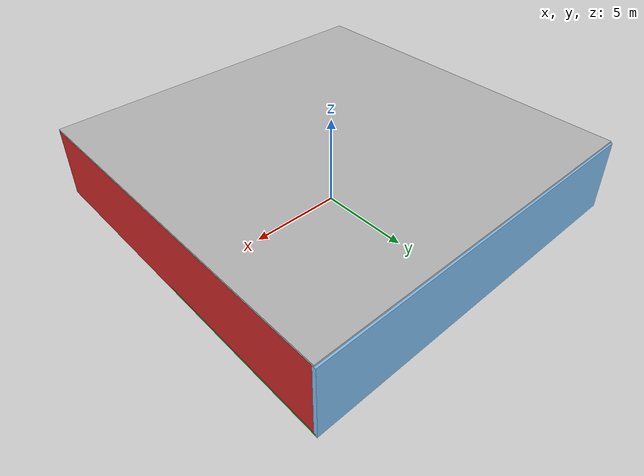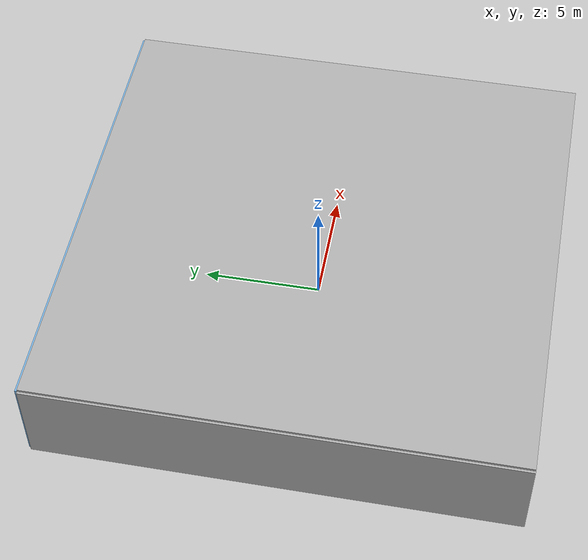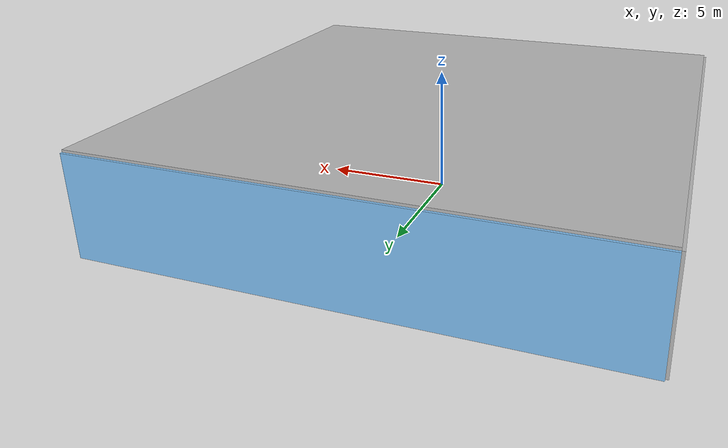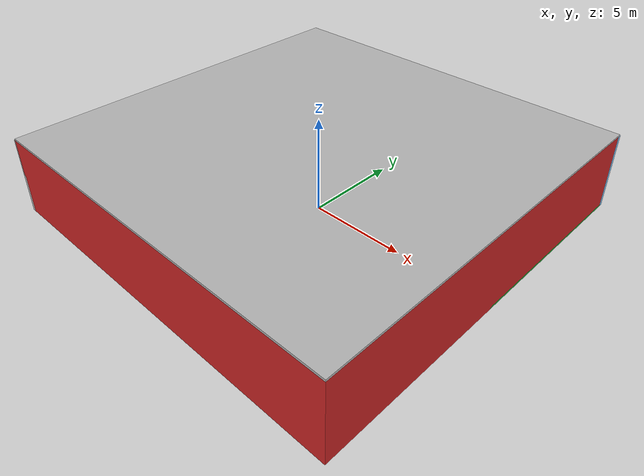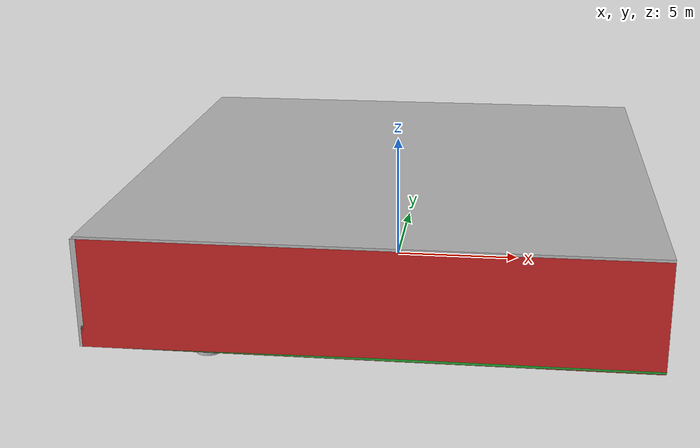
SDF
<sdf version="1.4">
 <world name="default">
  <physics type="ode">
   <max_step_size>0.001</max_step_size>
   <real_time_factor>1</real_time_factor>
   <real_time_update_rate>1000</real_time_update_rate>
   <gravity>0 0 -9.8</gravity>
  </physics>
  <scene><ambient>0.4 0.4 0.4 1</ambient><background>0.7 0.7 0.7 1</background><shadows>1</shadows></scene>
  <model name="Surrounding">
   <static>1</static>
   <link name="Ceiling">
    <collision name="Ceiling_Collision"><geometry><box><size>20 20 0.1</size></box></geometry></collision>
    <visual name="Ceiling_Visual">
     <geometry><box><size>20 20 0.1</size></box></geometry>
     <material>
      <script><uri>file://media/materials/scripts/gazebo.material</uri><name>Gazebo/CloudySky</name></script>
     </material>
    </visual>
    <pose>0 0 4.05 0 0 0</pose>
   </link>
   <link name="Wall_South">
    <collision name="Wall_South_Collision">
     <geometry><box><size>20 0 4</size></box></geometry>
     <pose>0 0 2 0 -0 0</pose>
    </collision>
    <visual name="Wall_South_Visual">
     <pose>0 0 2 0 -0 0</pose>
     <geometry><box><size>20 0 4</size></box></geometry>
     <material>
      <script><uri>file://media/materials/scripts/gazebo.material</uri><name>Gazebo/RedBright</name></script>
     </material>
    </visual>
    <velocity_decay><linear>0</linear><angular>0</angular></velocity_decay>
    <pose>0 -10 0 0 -0 0</pose>
   </link>
   <link name="Wall_East">
    <collision name="Wall_21_Collision">
     <geometry><box><size>20 0 4</size></box></geometry>
     <pose>0 0 2 0 -0 0</pose>
    </collision>
    <visual name="Wall_21_Visual">
     <pose>0 0 2 0 -0 0</pose>
     <geometry><box><size>20 0 4</size></box></geometry>
     <material>
      <script><uri>file://media/materials/scripts/gazebo.material</uri><name>Gazebo/Red</name></script>
     </material>
    </visual>
    <velocity_decay><linear>0</linear><angular>0</angular></velocity_decay>
    <pose>10 0 0 0 -0 1.5708</pose>
   </link>
   <link name="Wall_North">
    <collision name="Wall_22_Collision">
     <geometry><box><size>20 0.2 4</size></box></geometry>
     <pose>0 0 2 0 -0 0</pose>
    </collision>
    <visual name="Wall_22_Visual">
     <pose>0 0 2 0 -0 0</pose>
     <geometry><box><size>20 0.2 4</size></box></geometry>
     <material>
      <script><uri>file://media/materials/scripts/gazebo.material</uri><name>Gazebo/SkyBlue</name></script>
     </material>
    </visual>
    <velocity_decay><linear>0</linear><angular>0</angular></velocity_decay>
    <pose>0 10 0 0 -0 0</pose>
   </link>
   <link name="Wall_West">
    <collision name="Wall_23_Collision">
     <geometry><box><size>20 0.2 4</size></box></geometry>
     <pose>0 0 2 0 -0 0</pose>
    </collision>
    <visual name="Wall_23_Visual">
     <pose>0 0 2 0 -0 0</pose>
     <geometry><box><size>20 0.2 4</size></box></geometry>
     <material>
      <script><uri>file://media/materials/scripts/gazebo.material</uri><name>Gazebo/CloudySky</name></script>
     </material>
    </visual>
    <velocity_decay><linear>0</linear><angular>0</angular></velocity_decay>
    <pose>-10 0 0 0 0 -1.5708</pose>
   </link>
   <link name="Ground_link">
    <collision name="collision">
     <pose>0 0 .05 0 -0 0</pose>
     <geometry><box><size>20 20 0.1</size></box></geometry>
    </collision>
    <visual name="visual">
     <pose>0 0 .05 0 -0 0</pose>
     <geometry><box><size>20 20 0.1</size></box></geometry>
     <material>
      <script><uri>file://media/materials/scripts/gazebo.material</uri><name>Gazebo/Green</name></script>
     </material>
    </visual>
   </link>
   <static>1</static>
  </model>
  <spherical_coordinates>
   <surface_model>EARTH_WGS84</surface_model>
   <latitude_deg>0</latitude_deg>
   <longitude_deg>0</longitude_deg>
   <elevation>0</elevation>
   <heading_deg>0</heading_deg>
  </spherical_coordinates>
  <light name="lightball_0" type="diffuse">
   <diffuse>0.8 0.8 0.8 1</diffuse>
   <specular>0.2 0.2 0.2 1</specular>
   <attenuation>
    <range>100</range>
    <constant>0.7</constant>
    <linear>0.01</linear>
    <quadratic>0.001</quadratic>
   </attenuation>
   <direction>-0.5 0.1 -0.9</direction>
   <pose>3.91476040887 -5.29565696545 3.60057403078 0 0 0</pose>
  </light>
  <light name="lightball_1" type="diffuse">
   <diffuse>0.8 0.8 0.8 1</diffuse>
   <specular>0.2 0.2 0.2 1</specular>
   <attenuation>
    <range>100</range>
    <constant>0.7</constant>
    <linear>0.01</linear>
    <quadratic>0.001</quadratic>
   </attenuation>
   <direction>-0.5 0.1 -0.9</direction>
   <pose>-6.65295015059 9.15610451754 2.35181766005 0 0 0</pose>
  </light>
  <light name="lightball_2" type="diffuse">
   <diffuse>0.8 0.8 0.8 1</diffuse>
   <specular>0.2 0.2 0.2 1</specular>
   <attenuation>
    <range>100</range>
    <constant>0.7</constant>
    <linear>0.01</linear>
    <quadratic>0.001</quadratic>
   </attenuation>
   <direction>-0.5 0.1 -0.9</direction>
   <pose>-7.95908698335 3.82841772768 1.47403918365 0 0 0</pose>
  </light>
  <light name="lightball_3" type="diffuse">
   <diffuse>0.8 0.8 0.8 1</diffuse>
   <specular>0.2 0.2 0.2 1</specular>
   <attenuation>
    <range>100</range>
    <constant>0.7</constant>
    <linear>0.01</linear>
    <quadratic>0.001</quadratic>
   </attenuation>
   <direction>-0.5 0.1 -0.9</direction>
   <pose>7.99107663372 -3.85501580444 3.06362746816 0 0 0</pose>
  </light>
  <light name="lightball_4" type="diffuse">
   <diffuse>0.8 0.8 0.8 1</diffuse>
   <specular>0.2 0.2 0.2 1</specular>
   <attenuation>
    <range>100</range>
    <constant>0.7</constant>
    <linear>0.01</linear>
    <quadratic>0.001</quadratic>
   </attenuation>
   <direction>-0.5 0.1 -0.9</direction>
   <pose>-9.9179154773 5.94254384376 2.13533746953 0 0 0</pose>
  </light>
  <light name="lightball_5" type="diffuse">
   <diffuse>0.8 0.8 0.8 1</diffuse>
   <specular>0.2 0.2 0.2 1</specular>
   <attenuation>
    <range>100</range>
    <constant>0.7</constant>
    <linear>0.01</linear>
    <quadratic>0.001</quadratic>
   </attenuation>
   <direction>-0.5 0.1 -0.9</direction>
   <pose>2.20712405503 -7.00425267779 1.58395127183 0 0 0</pose>
  </light>
  <light name="lightball_6" type="diffuse">
   <diffuse>0.8 0.8 0.8 1</diffuse>
   <specular>0.2 0.2 0.2 1</specular>
   <attenuation>
    <range>100</range>
    <constant>0.7</constant>
    <linear>0.01</linear>
    <quadratic>0.001</quadratic>
   </attenuation>
   <direction>-0.5 0.1 -0.9</direction>
   <pose>-2.70428860284 6.00040712861 3.21647700171 0 0 0</pose>
  </light>
  <light name="lightball_7" type="diffuse">
   <diffuse>0.8 0.8 0.8 1</diffuse>
   <specular>0.2 0.2 0.2 1</specular>
   <attenuation>
    <range>100</range>
    <constant>0.7</constant>
    <linear>0.01</linear>
    <quadratic>0.001</quadratic>
   </attenuation>
   <direction>-0.5 0.1 -0.9</direction>
   <pose>2.62212061046 -6.42833672517 2.09463491484 0 0 0</pose>
  </light>
  <light name="lightball_8" type="diffuse">
   <diffuse>0.8 0.8 0.8 1</diffuse>
   <specular>0.2 0.2 0.2 1</specular>
   <attenuation>
    <range>100</range>
    <constant>0.7</constant>
    <linear>0.01</linear>
    <quadratic>0.001</quadratic>
   </attenuation>
   <direction>-0.5 0.1 -0.9</direction>
   <pose>-9.89638769212 -3.74401448294 1.33867809185 0 0 0</pose>
  </light>
  <light name="lightball_9" type="diffuse">
   <diffuse>0.8 0.8 0.8 1</diffuse>
   <specular>0.2 0.2 0.2 1</specular>
   <attenuation>
    <range>100</range>
    <constant>0.7</constant>
    <linear>0.01</linear>
    <quadratic>0.001</quadratic>
   </attenuation>
   <direction>-0.5 0.1 -0.9</direction>
   <pose>-2.91336577116 3.43794254376 2.53911520249 0 0 0</pose>
  </light>
  <light name="lightball_10" type="diffuse">
   <diffuse>0.8 0.8 0.8 1</diffuse>
   <specular>0.2 0.2 0.2 1</specular>
   <attenuation>
    <range>100</range>
    <constant>0.7</constant>
    <linear>0.01</linear>
    <quadratic>0.001</quadratic>
   </attenuation>
   <direction>-0.5 0.1 -0.9</direction>
   <pose>-9.70216702253 -0.00632292382178 2.77255579158 0 0 0</pose>
  </light>
  <light name="lightball_11" type="diffuse">
   <diffuse>0.8 0.8 0.8 1</diffuse>
   <specular>0.2 0.2 0.2 1</specular>
   <attenuation>
    <range>100</range>
    <constant>0.7</constant>
    <linear>0.01</linear>
    <quadratic>0.001</quadratic>
   </attenuation>
   <direction>-0.5 0.1 -0.9</direction>
   <pose>2.10355055387 2.19822280026 3.65553466684 0 0 0</pose>
  </light>
  <include>
   <uri>model://textured_shapes</uri>
   <pose>-5.48751616045 -7.30524674446 0 0 0 2.92026277184</pose>
  </include>
  <include><uri>model://cabinet</uri><pose>-4.1330145795 -3.72085278878 0 0 0 0.878328040227</pose></include>
  <include>
   <uri>model://robocup_3Dsim_goal</uri>
   <pose>-3.51350362916 7.03567355493 0 0 0 2.0974743549</pose>
  </include>
  <include>
   <uri>model://construction_cone</uri>
   <pose>1.39725478952 -7.49653363564 0 0 0 2.43752460809</pose>
  </include>
  <include>
   <uri>model://robocup_3Dsim_goal</uri>
   <pose>0.448085174491 5.52249811821 0 0 0 0.280130866213</pose>
  </include>
 </world>
</sdf>

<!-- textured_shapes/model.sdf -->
<sdf version="1.6">
  <model name="textured_shapes">
    <pose>0 0 0.5 0 0 0</pose>
    <link name="box">
      <pose>0 -1.5 0 0 0 0</pose>
      <collision name="collision">
        <geometry>
          <box>
            <size>1 1 1</size>
          </box>
        </geometry>
      </collision>
      <visual name="visual">
        <geometry>
          <box>
            <size>1 1 1</size>
          </box>
        </geometry>
        <material>
          <script>
            <uri>model://../model_source/models/textured_shapes/materials/scripts</uri>
            <uri>model://../model_source/models/textured_shapes/materials/textures</uri>
            <name>TexturedShape/Squares</name>
          </script>
        </material>
      </visual>
    </link>
    <link name="sphere">
      <collision name="collision">
        <geometry>
          <sphere>
            <radius>0.5</radius>
          </sphere>
        </geometry>
      </collision>
      <visual name="visual">
        <geometry>
          <sphere>
            <radius>0.5</radius>
          </sphere>
        </geometry>
        <material>
          <script>
            <uri>model://../model_source/models/textured_shapes/materials/scripts</uri>
            <uri>model://../model_source/models/textured_shapes/materials/textures</uri>
            <name>TexturedShape/Squares</name>
          </script>
        </material>
      </visual>
    </link>
    <link name="cylinder">
      <pose>0 1.5 0 0 0 0</pose>
      <collision name="collision">
        <geometry>
          <cylinder>
            <radius>0.5</radius>
            <length>1</length>
          </cylinder>
        </geometry>
      </collision>
      <visual name="visual">
        <geometry>
          <cylinder>
            <radius>0.5</radius>
            <length>1</length>
          </cylinder>
        </geometry>
        <material>
          <script>
            <uri>model://../model_source/models/textured_shapes/materials/scripts</uri>
            <uri>model://../model_source/models/textured_shapes/materials/textures</uri>
            <name>TexturedShape/Squares</name>
          </script>
        </material>
      </visual>
    </link>
  </model>
</sdf>

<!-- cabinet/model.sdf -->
<sdf version="1.5">
  <model name="cabinet">
    <static>true</static>
    <link name="cabinet_bottom_plate">
      <inertial>
        <pose>0 0 -1 0 0 0</pose>
        <inertia>
          <ixx>2.050000</ixx>
          <ixy>0</ixy>
          <ixz>0</ixz>
          <iyy>2.050000</iyy>
          <iyz>0</iyz>
          <izz>2.050000</izz>
        </inertia>
        <mass>25.000000</mass>
      </inertial>
      <collision name="cabinet_bottom_plate_geom">
        <pose>0 0 0.010000 0 0 0</pose>
        <geometry>
          <box>
            <size>0.450000 0.450000 0.020000</size>
          </box>
        </geometry>
      </collision>
      <visual name="cabinet_bottom_plate_geom_visual">
        <pose>0 0 0.010000 0 0 0</pose>
        <geometry>
          <box>
            <size>0.450000 0.450000 0.020000</size>
          </box>
        </geometry>
        <material>
          <script>
            <uri>model://media/materials/scripts/gazebo.material</uri>
            <name>Gazebo/Wood</name>
          </script>
        </material>
      </visual>
      <collision name="cabinet_bottom_plate_geom_cabinet_back_plate">
        <pose>0.235000 0 0.510000 0 0 0</pose>
        <geometry>
          <box>
            <size>0.020000 0.450000 1.020000</size>
          </box>
        </geometry>
      </collision>
      <visual name="cabinet_bottom_plate_geom_cabinet_back_plate_visual">
        <pose>0.235000 0 0.510000 0 0 0</pose>
        <geometry>
          <box>
            <size>0.020000 0.450000 1.020000</size>
          </box>
        </geometry>
        <material>
          <script>
            <uri>model://media/materials/scripts/gazebo.material</uri>
            <name>Gazebo/Wood</name>
          </script>
        </material>
      </visual>
      <collision name="cabinet_bottom_plate_geom_cabinet_left_plate">
        <pose>0 0.235000 0.510000 0 0 0</pose>
        <geometry>
          <box>
            <size>0.450000 0.020000 1.020000</size>
          </box>
        </geometry>
      </collision>
      <visual name="cabinet_bottom_plate_geom_cabinet_left_plate_visual">
        <pose>0 0.235000 0.510000 0 0 0</pose>
        <geometry>
          <box>
            <size>0.450000 0.020000 1.020000</size>
          </box>
        </geometry>
        <material>
          <script>
            <uri>model://media/materials/scripts/gazebo.material</uri>
            <name>Gazebo/Wood</name>
          </script>
        </material>
      </visual>
      <collision name="cabinet_bottom_plate_geom_cabinet_middle_plate">
        <pose>0 0 0.510000 0 0 0</pose>
        <geometry>
          <box>
            <size>0.450000 0.450000 0.020000</size>
          </box>
        </geometry>
      </collision>
      <visual name="cabinet_bottom_plate_geom_cabinet_middle_plate_visual">
        <pose>0 0 0.510000 0 0 0</pose>
        <geometry>
          <box>
            <size>0.450000 0.450000 0.020000</size>
          </box>
        </geometry>
        <material>
          <script>
            <uri>model://media/materials/scripts/gazebo.material</uri>
            <name>Gazebo/Wood</name>
          </script>
        </material>
      </visual>
      <collision name="cabinet_bottom_plate_geom_cabinet_right_plate">
        <pose>0 -0.235000 0.510000 0 0 0</pose>
        <geometry>
          <box>
            <size>0.450000 0.020000 1.020000</size>
          </box>
        </geometry>
      </collision>
      <visual name="cabinet_bottom_plate_geom_cabinet_right_plate_visual">
        <pose>0 -0.235000 0.510000 0 0 0</pose>
        <geometry>
          <box>
            <size>0.450000 0.020000 1.020000</size>
          </box>
        </geometry>
        <material>
          <script>
            <uri>model://media/materials/scripts/gazebo.material</uri>
            <name>Gazebo/Wood</name>
          </script>
        </material>
      </visual>
      <collision name="cabinet_bottom_plate_geom_cabinet_top_plate">
        <pose>0 0 1.010000 0 0 0</pose>
        <geometry>
          <box>
            <size>0.450000 0.450000 0.020000</size>
          </box>
        </geometry>
      </collision>
      <visual name="cabinet_bottom_plate_geom_cabinet_top_plate_visual">
        <pose>0 0 1.010000 0 0 0</pose>
        <geometry>
          <box>
            <size>0.450000 0.450000 0.020000</size>
          </box>
        </geometry>
        <material>
          <script>
            <uri>model://media/materials/scripts/gazebo.material</uri>
            <name>Gazebo/Wood</name>
          </script>
        </material>
      </visual>
    </link>
  </model>
</sdf>

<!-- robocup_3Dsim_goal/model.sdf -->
<sdf version="1.5">
  <model name="robocup_3d_goal">
    <static>true</static>
    <link name="left_post">
      <pose>0 1.05 0.45 0 0 0</pose>
      <collision name="collision">
        <geometry>
          <cylinder>
            <radius>0.05</radius>
            <length>0.9</length>
          </cylinder>
        </geometry>
      </collision>
      <visual name="visual">
        <geometry>
          <cylinder>
            <radius>0.05</radius>
            <length>0.9</length>
          </cylinder>
        </geometry>
        <material>
          <script>
            <uri>file://media/materials/scripts/gazebo.material</uri>
            <name>Gazebo/ZincYellow</name>
          </script>
        </material>
      </visual>
    </link>
    <link name="left_support_horiz_lower">
      <pose>0.30 1.05 0.01 0 0 0</pose>
      <collision name="collision">
        <geometry>
          <box>
            <size>0.50 0.02 0.02</size>
          </box>
        </geometry>
      </collision>
      <visual name="visual">
        <geometry>
          <box>
            <size>0.50 0.02 0.02</size>
          </box>
        </geometry>
        <material>
          <script>
            <uri>file://media/materials/scripts/gazebo.material</uri>
            <name>Gazebo/White</name>
          </script>
        </material>
      </visual>
    </link>
    <link name="left_support_horiz_upper">
      <pose>0.30 1.05 0.79 0 0 0</pose>
      <collision name="collision">
        <geometry>
          <box>
            <size>0.50 0.02 0.02</size>
          </box>
        </geometry>
      </collision>
      <visual name="visual">
        <geometry>
          <box>
            <size>0.50 0.02 0.02</size>
          </box>
        </geometry>
        <material>
          <script>
            <uri>file://media/materials/scripts/gazebo.material</uri>
            <name>Gazebo/White</name>
          </script>
        </material>
      </visual>
    </link>
    <link name="left_support_vertical">
      <pose>0.56 1.05 0.4 0 1.5708 0</pose>
      <collision name="collision">
        <geometry>
          <box>
            <size>0.80 0.02 0.02</size>
          </box>
        </geometry>
      </collision>
      <visual name="visual">
        <geometry>
          <box>
            <size>0.80 0.02 0.02</size>
          </box>
        </geometry>
        <material>
          <script>
            <uri>file://media/materials/scripts/gazebo.material</uri>
            <name>Gazebo/White</name>
          </script>
        </material>
      </visual>
    </link>
    <link name="right_support_horiz_lower">
      <pose>0.30 -1.05 0.01 0 0 0</pose>
      <collision name="collision">
        <geometry>
          <box>
            <size>0.50 0.02 0.02</size>
          </box>
        </geometry>
      </collision>
      <visual name="visual">
        <geometry>
          <box>
            <size>0.50 0.02 0.02</size>
          </box>
        </geometry>
        <material>
          <script>
            <uri>file://media/materials/scripts/gazebo.material</uri>
            <name>Gazebo/White</name>
          </script>
        </material>
      </visual>
    </link>
    <link name="right_support_horiz_upper">
      <pose>0.30 -1.05 0.79 0 0 0</pose>
      <collision name="collision">
        <geometry>
          <box>
            <size>0.50 0.02 0.02</size>
          </box>
        </geometry>
      </collision>
      <visual name="visual">
        <geometry>
          <box>
            <size>0.50 0.02 0.02</size>
          </box>
        </geometry>
        <material>
          <script>
            <uri>file://media/materials/scripts/gazebo.material</uri>
            <name>Gazebo/White</name>
          </script>
        </material>
      </visual>
    </link>
    <link name="right_support_vertical">
      <pose>0.56 -1.05 0.4 0 1.5708 0</pose>
      <collision name="collision">
        <geometry>
          <box>
            <size>0.80 0.02 0.02</size>
          </box>
        </geometry>
      </collision>
      <visual name="visual">
        <geometry>
          <box>
            <size>0.80 0.02 0.02</size>
          </box>
        </geometry>
        <material>
          <script>
            <uri>file://media/materials/scripts/gazebo.material</uri>
            <name>Gazebo/White</name>
          </script>
        </material>
      </visual>
    </link>
    <link name="center_support_horiz_lower">
      <pose>0.56 0 0.01 0 1.5708 0</pose>
      <collision name="collision">
        <geometry>
          <box>
            <size>0.02 2.08 0.02</size>
          </box>
        </geometry>
      </collision>
      <visual name="visual">
        <geometry>
          <box>
            <size>0.02 2.08 0.02</size>
          </box>
        </geometry>
        <material>
          <script>
            <uri>file://media/materials/scripts/gazebo.material</uri>
            <name>Gazebo/White</name>
          </script>
        </material>
      </visual>
    </link>
    <link name="center_support_horiz_upper">
      <pose>0.56 0 0.79 0 1.5708 0</pose>
      <collision name="collision">
        <geometry>
          <box>
            <size>0.02 2.08 0.02</size>
          </box>
        </geometry>
      </collision>
      <visual name="visual">
        <geometry>
          <box>
            <size>0.02 2.08 0.02</size>
          </box>
        </geometry>
        <material>
          <script>
            <uri>file://media/materials/scripts/gazebo.material</uri>
            <name>Gazebo/White</name>
          </script>
        </material>
      </visual>
    </link>
    <link name="right_post">
      <pose>0 -1.05 0.45 0 0 0</pose>
      <collision name="collision">
        <geometry>
          <cylinder>
            <radius>0.05</radius>
            <length>0.9</length>
          </cylinder>
        </geometry>
      </collision>
      <visual name="visual">
        <geometry>
          <cylinder>
            <radius>0.05</radius>
            <length>0.9</length>
          </cylinder>
        </geometry>
        <material>
          <script>
            <uri>file://media/materials/scripts/gazebo.material</uri>
            <name>Gazebo/ZincYellow</name>
          </script>
        </material>
      </visual>
    </link>
    <link name="crossbar">
      <pose>0 0 0.85 1.57 1.57 0</pose>
      <collision name="collision">
        <geometry>
          <cylinder>
            <radius>0.05</radius>
            <length>2.0</length>
          </cylinder>
        </geometry>
      </collision>
      <visual name="visual">
        <geometry>
          <cylinder>
            <radius>0.05</radius>
            <length>2.0</length>
          </cylinder>
        </geometry>
        <material>
          <script>
            <uri>file://media/materials/scripts/gazebo.material</uri>
            <name>Gazebo/ZincYellow</name>
          </script>
        </material>
      </visual>
    </link>
    <link name="center_net">
      <pose>0.56 0 0.40 0 0 0</pose>
      <collision name="collision">
        <geometry>
          <box>
            <size>0.01 2.1 0.80</size>
          </box>
        </geometry>
      </collision>
      <visual name="visual">
        <geometry>
          <box>
            <size>0.01 2.1 0.80</size>
          </box>
        </geometry>
        <material>
          <script>
            <uri>model://../model_source/models/robocup09_spl_field/materials/scripts/</uri>
            <uri>model://../model_source/models/robocup09_spl_field/materials/textures/</uri>
            <name>RoboCup/Net</name>
          </script>
        </material>
      </visual>
    </link>
    <link name="left_net">
      <pose>0.30 1.05 0.40 0 0 0</pose>
      <collision name="collision">
        <geometry>
          <box>
            <size>0.50 0.01 0.76</size>
          </box>
        </geometry>
      </collision>
      <visual name="visual">
        <geometry>
          <box>
            <size>0.50 0.01 0.76</size>
          </box>
        </geometry>
        <material>
          <script>
            <uri>model://../model_source/models/robocup09_spl_field/materials/scripts/</uri>
            <uri>model://../model_source/models/robocup09_spl_field/materials/textures/</uri>
            <name>RoboCup/Net</name>
          </script>
        </material>
      </visual>
    </link>
    <link name="right_net">
      <pose>0.30 -1.05 0.40 0 0 0</pose>
      <collision name="collision">
        <geometry>
          <box>
            <size>0.50 0.01 0.76</size>
          </box>
        </geometry>
      </collision>
      <visual name="visual">
        <geometry>
          <box>
            <size>0.50 0.01 0.76</size>
          </box>
        </geometry>
        <material>
          <script>
            <uri>model://../model_source/models/robocup09_spl_field/materials/scripts/</uri>
            <uri>model://../model_source/models/robocup09_spl_field/materials/textures/</uri>
            <name>RoboCup/Net</name>
          </script>
        </material>
      </visual>
    </link>
  </model>
</sdf>

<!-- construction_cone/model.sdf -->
<sdf version="1.5">
  <model name="Construction Cone">
    <link name="link">
      <collision name="collision">
        <geometry>
          <mesh>
            <scale>10 10 10</scale>
            <uri>file://isr-testbed/construction_cone/meshes/construction_cone.dae</uri>
          </mesh>
        </geometry>
      </collision>
      <visual name="visual">
        <geometry>
          <mesh>
            <scale>10 10 10</scale>
            <uri>file://isr-testbed/construction_cone/meshes/construction_cone.dae</uri>
          </mesh>
        </geometry>
      </visual>
    </link>
  </model>
</sdf>
